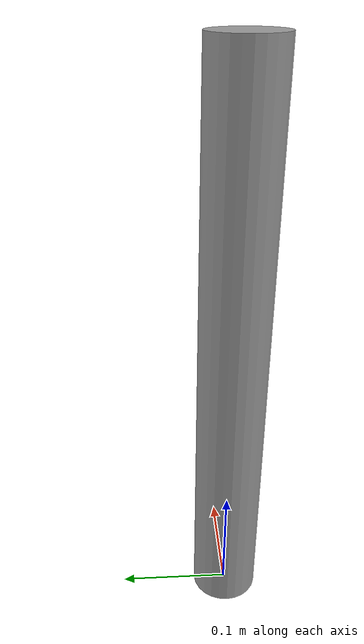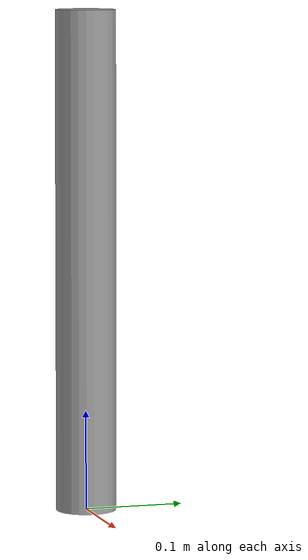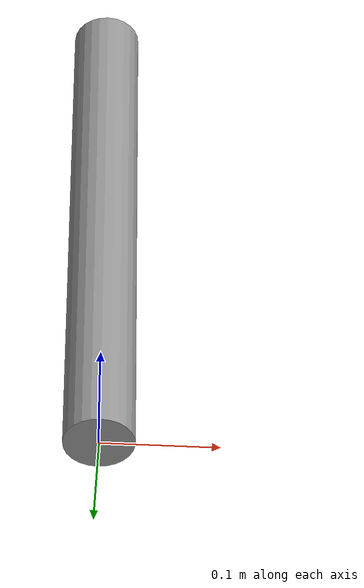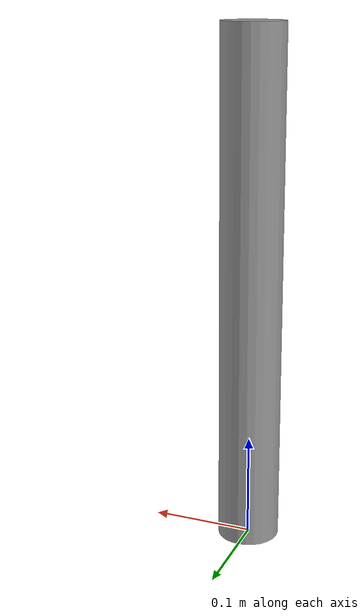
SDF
<?xml version='1.0'?>
<sdf version='1.6'>
  <model name='camera_base'>
    <link name='link'>
      <pose frame=''>0 0 0.25 0 -0 0</pose>
        <visual name='visual'>
          <geometry>
          <cylinder>
            <radius>0.03</radius>
            <length>0.5</length>
          </cylinder>
        </geometry>
        <material>
          <lighting>1</lighting>
          <script>
            <uri>file://media/materials/scripts/gazebo.material</uri>
            <name>Gazebo/Grey</name>
          </script>
          <ambient>0.3 0.3 0.3 1</ambient>
          <diffuse>0.7 0.7 0.7 1</diffuse>
          <specular>0.01 0.01 0.01 1</specular>
          <emissive>0 0 0 1</emissive>
          <shader type='vertex'>
            <normal_map>__default__</normal_map>
          </shader>
        </material>
        <cast_shadows>1</cast_shadows>
        <transparency>0</transparency>
      </visual>
      <collision name='collision'>
        <laser_retro>0</laser_retro>
        <max_contacts>10</max_contacts>
        <pose frame=''>0 0 0 0 -0 0</pose>
        <geometry>
          <cylinder>
            <radius>0.03</radius>
            <length>0.5</length>
          </cylinder>
        </geometry>
       </collision>
    </link>
    <static>1</static>
    <allow_auto_disable>1</allow_auto_disable>
  </model>
</sdf>
